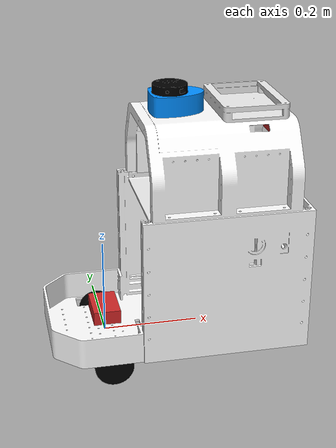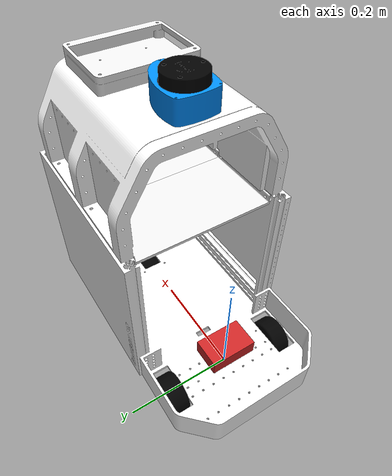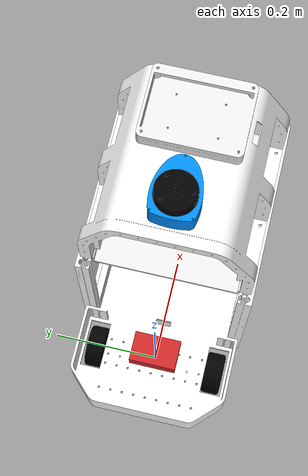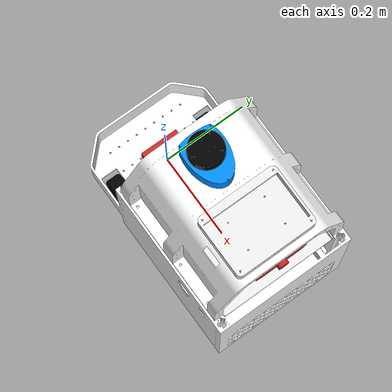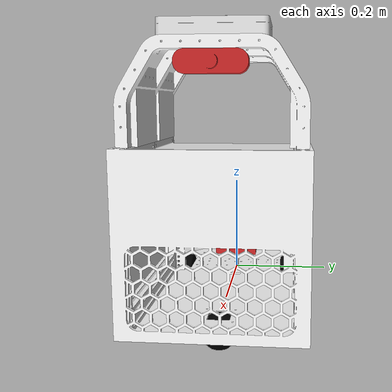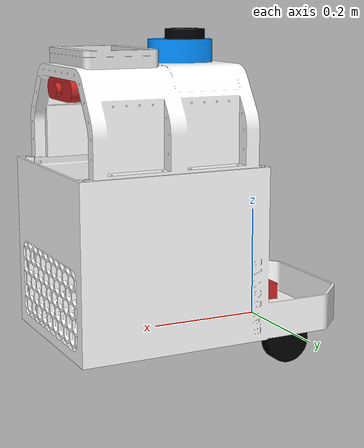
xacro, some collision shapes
<?xml version="1.0" encoding="UTF-8"?>
<robot xmlns:xacro="http://www.ros.org/wiki/xacro" name="alexbot">

   <xacro:arg name="use_ros2_control" default="true"/>
   <xacro:arg name="sim_mode" default="false"/>

   <xacro:include filename="properties.xacro"/>
   <xacro:include filename="inertial_macro.xacro"/>
   <xacro:include filename="robot_core.urdf.xacro"/>

   <xacro:if value="$(arg use_ros2_control)">
      <xacro:include filename="ros2_control.xacro"/>
   </xacro:if>
   <xacro:unless value="$(arg use_ros2_control)">
      <xacro:include filename="gazebo_control.xacro"/>
   </xacro:unless>

   <xacro:include filename="lidar.xacro"/>
   <xacro:include filename="camera.xacro"/>
   <xacro:include filename="imu.xacro"/>

</robot>

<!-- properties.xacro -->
<robot xmlns:xacro="http://www.ros.org/wiki/xacro">

      <!-- CHASSIS -->
      <xacro:property name="chassis_length" value="0.525"/>
      <xacro:property name="chassis_width" value="0.310"/>
      <xacro:property name="chassis_height" value="0.310"/>
      <xacro:property name="chassis_mass" value="5.6"/>

      <!-- HEAD -->
      <xacro:property name="head_length" value="0.300"/>
      <xacro:property name="head_width" value="0.300"/>
      <xacro:property name="head_height" value="0.174"/>
      <xacro:property name="head_mass" value="1.05"/>

      <!-- WHEELS -->
      <xacro:property name="wheel_radius" value="0.04"/>
      <xacro:property name="wheel_length" value="0.035"/>
      <xacro:property name="wheel_mass" value="0.35"/>
      <xacro:property name="wheel_y_offset" value="0.11815"/>
      <xacro:property name="wheel_z_offset" value="0.017"/>

      <!-- CASTER WHEELS -->
      <xacro:property name="caster_wheel_radius" value="0.033"/>
      <xacro:property name="caster_wheel_mass" value="0.4"/>
      <xacro:property name="caster_wheel_offset_x" value="0.420"/>
      <xacro:property name="caster_wheel_offset_z" value="${wheel_z_offset + (wheel_radius - caster_wheel_radius)}"/>

      <!-- SCREEN CASE -->
      <xacro:property name="screen_case_length" value="0.133"/>
      <xacro:property name="screen_case_width" value="0.175"/>
      <xacro:property name="screen_case_height" value="0.0298"/>

      <!-- SCREEN -->
      <xacro:property name="screen_length" value="0.100"/>
      <xacro:property name="screen_width" value="0.165"/>
      <xacro:property name="screen_height" value="0.010"/>

       <!-- LIDAR CASE -->
      <xacro:property name="lidar_case_length" value="0.110"/>
      <xacro:property name="lidar_case_width" value="0.085"/>
      <xacro:property name="lidar_case_height" value="0.040"/>

       <!-- LIDAR -->
       <xacro:property name="lidar_length" value="0.025"/>
       <xacro:property name="lidar_diameter" value="0.072"/>
       <xacro:property name="lidar_mass" value="0.07"/>

       <!-- center at base_link from chassis -->
       <xacro:property name="move_to_center" value="${0.180 + 0.020}"/>

      <!-- COLORS -->
      <material name="white">
         <color rgba="1 1 1 1"/>
      </material>

      <material name="black">
         <color rgba="0 0 0 1"/>
      </material>

      <material name="grey" >
           <color rgba="0.5725490196078431 0.5843137254901961 0.5686274509803921 1.0" />
       </material>

      <material name="bloodorange" >
       <color rgba="${255/255} ${119/255} ${0/255} 1.0" />
     </material>

     <material name="lightblue">
      <color rgba="${0/255} ${141/255} ${255/255} 1.0"/>
      </material>

      <!-- MACROS -->
      <xacro:macro name="origin" params="x y z roll pitch yaw">
         <origin xyz="${0.490 + x} ${-0.431 + y} ${0.059964 + z}" rpy="${0 + roll} ${0 + pitch} ${(pi/2) + yaw}"/>
      </xacro:macro>

</robot>

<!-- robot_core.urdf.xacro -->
<robot xmlns:xacro="http://www.ros.org/wiki/xacro">

   <!-- BASE FOOTPRINT -->
   <link name="base_footprint">
   </link>

   <!-- BASE LINK -->
   <joint name="base_joint" type="fixed">
      <origin xyz="0 0 -${wheel_z_offset + wheel_radius}" rpy="0 0 0"/>
      <parent link="base_link"/>
      <child link="base_footprint"/>
   </joint>

   <link name="base_link">
   </link>

   <!-- CHASSIS_LINK -->
   <joint name="chassis_joint" type="fixed">
      <origin xyz="-0.121 0.0 0.0" rpy="0.0 0.0 0.0"/>
      <parent link="base_link"/>
      <child link="chassis_link"/>
   </joint>

   <link name="chassis_link">
      <visual>
         <origin xyz="0.0 0.0 0.0" rpy="0.0 0.0 0.0"/>
        <geometry>
            <mesh filename="package://arns_description/meshes/chassis.stl" scale="0.001 0.001 0.001"/>
        </geometry>
        <material name="white"/>
      </visual>
      <collision>
         <origin xyz="${chassis_length/2} 0.0 ${chassis_height/2}" rpy="0.0 0.0 0.0"/>
         <geometry>
            <box size="${chassis_length} ${chassis_width} ${chassis_height}"/>
         </geometry>
      </collision>

      <!-- Head -->
      <visual>
         <origin xyz="${0.180 + (0.345/2) - 0.005} 0.0 ${chassis_height - 0.0134}" rpy="0.0 0.0 ${pi/2}"/>
         <geometry>
            <mesh filename="package://arns_description/meshes/head.stl" scale="0.001 0.001 0.001"/>
         </geometry>
         <material name="white"/>
      </visual>
      <collision>
         <origin xyz="${(head_length/2) + move_to_center - 0.0025} 0 ${(head_height/2) + chassis_height}" rpy="0 0 0"/>
         <geometry>
            <box size="${head_length} ${head_width} ${head_height}"/>
         </geometry>
      </collision>

      <!-- Head Floors -->
      <visual name="head_floor1_visual">
         <origin xyz="${0.075 + move_to_center} 0.0 ${chassis_height - 0.020}" rpy="0.0 0.0 0.0"/>
         <geometry>
            <mesh filename="package://arns_description/meshes/head_floor.stl" scale="0.001 0.001 0.001"/>
         </geometry>
      </visual>
      <collision name="head_floor1_collision">
         <origin xyz="${0.075 + move_to_center} 0.0 ${chassis_height - 0.015}" rpy="0.0 0.0 0.0"/>
         <geometry>
            <box size="0.150 0.260 0.020"/>
         </geometry>
      </collision>

      <visual name="head_floor2_visual">
         <origin xyz="${0.075 + move_to_center + 0.150} 0.0 ${chassis_height - 0.020}" rpy="0.0 0.0 0.0"/>
         <geometry>
            <mesh filename="package://arns_description/meshes/head_floor.stl" scale="0.001 0.001 0.001"/>
         </geometry>
      </visual>
      <collision name="head_floor2_collision">
         <origin xyz="${0.075 + move_to_center + 0.150} 0.0 ${chassis_height - 0.015}" rpy="0.0 0.0 0.0"/>
         <geometry>
            <box size="0.150 0.260 0.020"/>
         </geometry>
      </collision>

      <!-- Lidar Case -->
      <visual>
         <origin xyz="${(lidar_case_length/2) + move_to_center + 0.0228} 0.0 ${chassis_height + head_height - 0.008}" rpy="0.0 0.0 0.0"/>
         <geometry>
            <mesh filename="package://arns_description/meshes/lidar_case.stl" scale="0.001 0.001 0.001"/>
         </geometry>
         <material name="lightblue"/>
      </visual>
      <collision>
         <origin xyz="${(lidar_case_length/2) + move_to_center + 0.0228} 0.0 ${chassis_height + head_height + (lidar_case_height/2) - 0.008}" rpy="0.0 0.0 0.0"/>
         <geometry>
            <box size="${lidar_case_length} ${lidar_case_width} ${lidar_case_height}"/>
         </geometry>
      </collision>

      <!-- Screen Case -->

      <visual>
         <origin xyz="${(screen_case_length/2) + move_to_center - 0.0025 + 0.150 + 0.0035} 0.0 ${chassis_height + head_height - 0.008}" rpy="0.0 0.0 0.0"/>
         <geometry>
            <mesh filename="package://arns_description/meshes/screen_case.stl" scale="0.001 0.001 0.001"/>
         </geometry>
      </visual>
      <collision>
         <origin xyz="${(screen_case_length/2) + move_to_center - 0.0025 + 0.150 + 0.0035} 0.0 ${(screen_case_height/2) + chassis_height + head_height - 0.008}" rpy="0.0 0.0 0.0"/>
         <geometry>
            <box size="${screen_case_length} ${screen_case_width} ${screen_case_height}"/>
         </geometry>
      </collision>
      <xacro:inertial_box mass="${chassis_mass}" x="${chassis_length}" y="${chassis_width}" z="${chassis_height}">
         <origin xyz="${chassis_length/2} 0.0 ${chassis_height/2}" rpy="0.0 0.0 0.0"/>
      </xacro:inertial_box>
   </link>

   <!-- LEFT WHEEL-->

   <joint name="left_wheel_joint" type="continuous">
      <origin xyz="0.0 ${wheel_y_offset} -${wheel_z_offset}" rpy="-${pi/2} 0.0 0.0"/>
      <parent link="base_link"/>
      <child link="left_wheel_link"/>
      <axis xyz="0.0 0.0 1"/>
   </joint>

   <link name="left_wheel_link">
      <visual>
         <origin xyz="0.0 0.0 0.0" rpy="-${pi/2} 0.0 0.0"/>
         <geometry>
            <mesh filename="package://arns_description/meshes/left_wheel.stl" scale="0.001 0.001 0.001"/>
         </geometry>
         <material name="black"/>
      </visual>
      <collision>
         <origin xyz="0.0 0.0 0.0" rpy="0.0 0.0 0.0"/>
         <geometry>
            <sphere radius="${wheel_radius}"/>
         </geometry>
      </collision>
      <xacro:inertial_cylinder mass="${wheel_mass}" length="${wheel_length}" radius="${wheel_radius}">
         <origin xyz="0.0 0.0 0.0" rpy="0.0 0.0 0.0"/>
      </xacro:inertial_cylinder>
   </link>

   <!-- RIGHT WHEEL -->

   <joint name="right_wheel_joint" type="continuous">
      <origin xyz="0.0 -${wheel_y_offset} -${wheel_z_offset}" rpy="${pi/2} 0.0 0.0"/>
      <parent link="base_link"/>
      <child link="right_wheel_link"/>
      <axis xyz="0.0 0.0 -1"/>
   </joint>

   <link name="right_wheel_link">
      <visual>
         <origin xyz="0.0 0.0 0.0" rpy="${pi/2} 0.0 0.0"/>
         <geometry>
            <mesh filename="package://arns_description/meshes/right_wheel.stl" scale="0.001 0.001 0.001"/>
         </geometry>
         <material name="black"/>
      </visual>
      <collision>
         <origin xyz="0.0 0.0 0.0" rpy="0.0 0.0 0.0"/>
         <geometry>
            <sphere radius="${wheel_radius}"/>
         </geometry>
      </collision>
      <xacro:inertial_cylinder mass="${wheel_mass}" length="${wheel_length}" radius="${wheel_radius}">
         <origin xyz="0.0 0.0 0.0" rpy="0.0 0.0 0.0"/>
      </xacro:inertial_cylinder>
   </link>

   <!-- CASTER WHEEL -->

   <joint name="caster_wheel_joint" type="fixed">
      <origin xyz="${caster_wheel_offset_x - 0.121046} 0 -${caster_wheel_offset_z}"/>
      <parent link="base_link"/>
      <child link="caster_wheel_link"/>
   </joint>

   <link name="caster_wheel_link">
      <visual>
         <geometry>
            <sphere radius="${caster_wheel_radius}"/>
         </geometry>
         <material name="black"/>
      </visual>
      <collision>
         <geometry>
            <sphere radius="${caster_wheel_radius}"/>
         </geometry>

      </collision>
      <xacro:inertial_sphere mass="${caster_wheel_mass}" radius="${caster_wheel_radius}">
         <origin xyz="0.0 0.0 0.0" rpy="0.0 0.0 0.0"/>
      </xacro:inertial_sphere>
   </link>

   <gazebo reference="chassis_link">
      <material>Gazebo/White</material>
   </gazebo>

   <gazebo reference="left_wheel_link">
      <material>Gazebo/Black</material>
   </gazebo>

   <gazebo reference="right_wheel_link">
      <material>Gazebo/Black</material>
   </gazebo>

   <gazebo reference="caster_wheel_link">
      <material>Gazebo/Black</material>
   </gazebo>

   <gazebo reference="caster_wheel_link">
      <mu1 value="0.001"/>
      <mu2 value="0.001"/>
   </gazebo>

</robot>

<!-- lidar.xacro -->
<robot xmlns:xacro="http://www.ros.org/wiki/xacro">

   <joint name="lidar_joint" type="fixed">
      <origin xyz="${-0.121 + 0.180 + (0.345/2) - 0.0765} 0.0 ${chassis_height + head_height + 0.042}" rpy="0.0 0.0 0.0"/>
      <parent link="base_link"/>
      <child link="lidar_link"/>
   </joint>

   <link name="lidar_link">
      <visual>
         <origin xyz="0.0 0.0 -${0.042/2}" rpy="0.0 0.0 0.0"/>
         <geometry>
            <mesh filename="package://arns_description/meshes/lidar.stl" scale="0.001 0.001 0.001"/>
         </geometry>
         <material name="black"/>
      </visual>
      <collision>
         <origin xyz="-0.013 0.0 ${lidar_length - 0.005 - (0.042/2)}" rpy="0.0 0.0 0.0"/>
         <geometry>
            <cylinder radius="${lidar_diameter/2}" length="${lidar_length}"/>
         </geometry>
      </collision>
      <xacro:inertial_cylinder mass="${lidar_mass}" radius="${lidar_diameter/2}" length="${lidar_length}">
         <origin xyz="-0.013 0.0 ${lidar_length - 0.005 - (0.042/2)}" rpy="0.0 0.0 0.0"/>
      </xacro:inertial_cylinder>
   </link>

   <gazebo reference="lidar_link">
      <material>Gazebo/Black</material>
      <sensor name="rplidar" type="ray">
         <pose>0 0 0 0 0 0</pose>
         <always_on>true</always_on>
         <visualize>false</visualize>
         <update_rate>10</update_rate>
         <ray>
            <scan>
              <horizontal>
                <samples>360</samples>
                <resolution>1.000000</resolution>
                <min_angle>0.000000</min_angle>
                <max_angle>6.280000</max_angle>
              </horizontal>
            </scan>
            <range>
              <min>0.3</min>
              <max>12</max>
              <resolution>0.015000</resolution>
            </range>
            <noise>
              <type>gaussian</type>
              <mean>0.0</mean>
              <stddev>0.01</stddev>
            </noise>
          </ray>
          <plugin name="lidar_controller" filename="libgazebo_ros_ray_sensor.so">
            <ros>
              <remapping>~/out:=scan</remapping>
            </ros>
            <output_type>sensor_msgs/LaserScan</output_type>
            <frame_name>lidar_link</frame_name>
          </plugin>
      </sensor>
   </gazebo>
</robot>

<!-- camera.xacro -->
<robot xmlns:xacro="http://www.ros.org/wiki/xacro">

   <joint name="camera_joint" type="fixed">
      <origin xyz="${-0.121 + 0.180 + 0.345 - 0.02} 0.0 ${chassis_height + head_height - 0.048}" rpy="0.0 0.0 0.0"/>
      <parent link="base_link"/>
      <child link="camera_link"/>
   </joint>

   <link name="camera_link">
      <visual>
         <geometry>
            <mesh filename="package://arns_description/meshes/camera.stl" scale="0.001 0.001 0.001"/>
         </geometry>
      </visual>
      <collision>
         <origin xyz="-0.02 0.0 0.0" rpy="0.0 0.0 0.0"/>
         <geometry>
            <box size="0.04 0.120 0.04"/>
         </geometry>
      </collision>
      <xacro:inertial_box mass="0.01" x="0.04" y="0.120" z="0.04">
         <origin xyz="-0.02 0.0 0.0" rpy="0.0 0.0 0.0"/>
      </xacro:inertial_box>
   </link>

   <joint name="camera_joint_optical" type="fixed">
      <origin xyz="0.0 0.0 0.0" rpy="-${pi/2} 0.0 -${pi/2}"/>
      <parent link="camera_link"/>
      <child link="camera_link_optical"/>
   </joint>

   <link name="camera_link_optical"></link>

   <gazebo reference="camera_link">
      <material>Gazebo/Red</material>
      <sensor name="camera" type="camera">
         <visualize>true</visualize>
         <update_rate>30.0</update_rate>
         <camera>
            <horizontal_fov>1.5708</horizontal_fov>
            <image>
               <format>R8G8B8</format>
               <width>640</width>
               <height>480</height>
            </image>
            <clip>
               <near>0.05</near>
               <far>8.0</far>
            </clip>
         </camera>
         <plugin name="camera_controller" filename="libgazebo_ros_camera.so">
            <frame_name>camera_link_optical</frame_name>
         </plugin>
      </sensor>
   </gazebo>

</robot>

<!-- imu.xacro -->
<robot xmlns:xacro="http://www.ros.org/wiki/xacro">

   <joint name="imu_joint" type="fixed">
      <parent link="base_link"/>
      <child link="imu_link"/>
      <origin xyz="0 0 0.05" rpy="0 0 0"/>
   </joint>

   <link name="imu_link">
      <visual>
        <origin xyz="0 0 0" rpy="0 0 ${pi/2}"/>
         <geometry>
            <mesh filename="file:///home/ervinpicardal/robot_ws/src/arns_description/meshes/imu.stl" scale="0.001 0.001 0.001"/>
         </geometry>
      </visual>
      <collision>
         <geometry>
            <box size="0.057 0.0895 0.029"/>
         </geometry>
      </collision>
     <xacro:inertial_box mass="0.01" x="0.057" y="0.0895" z="0.029">
        <origin xyz="0 0 0" rpy="0 0 0"/>
     </xacro:inertial_box>
   </link>

   <gazebo reference="imu_link">
      <material>Gazebo/Red</material>
      <sensor name="bno055_imu" type="imu">
         <always_on>true</always_on>
         <update_rate>100</update_rate>
         <visualize>true</visualize>
         <plugin name="imu_controller" filename="libgazebo_ros_imu_sensor.so">
            <frame_name>imu_link</frame_name>
            <ros>
               <remapping>~/out:=imu_broadcaster/imu</remapping>
            </ros>
            <initial_orientation_as_reference>false</initial_orientation_as_reference>
         </plugin>
         <imu>
            <angular_velocity>
               <x>
               <noise type="gaussian">
                  <mean>0.0</mean>
                  <stddev>2e-4</stddev>
               </noise>
               </x>
               <y>
               <noise type="gaussian">
                  <mean>0.0</mean>
                  <stddev>2e-4</stddev>
               </noise>
               </y>
               <z>
               <noise type="gaussian">
                  <mean>0.0</mean>
                  <stddev>2e-4</stddev>
               </noise>
               </z>
            </angular_velocity>
            <linear_acceleration>
               <x>
               <noise type="gaussian">
                  <mean>0.0</mean>
                  <stddev>1.7e-2</stddev>
               </noise>
               </x>
               <y>
               <noise type="gaussian">
                  <mean>0.0</mean>
                  <stddev>1.7e-2</stddev>
               </noise>
               </y>
               <z>
               <noise type="gaussian">
                  <mean>0.0</mean>
                  <stddev>1.7e-2</stddev>
               </noise>
               </z>
            </linear_acceleration>
            <orientation>
               <x>
               <noise type="gaussian">
                  <mean>0.0</mean>
                  <stddev>2e-3</stddev>
                  </noise>
               </x>
               <y>
                  <noise type="gaussian">
                  <mean>0.0</mean>
                  <stddev>2e-3</stddev>
                  </noise>
               </y>
               <z>
                  <noise type="gaussian">
                  <mean>0.0</mean>
                  <stddev>2e-3</stddev>
                  </noise>
               </z>
            </orientation>
         </imu>
      </sensor>
</gazebo>

</robot>
